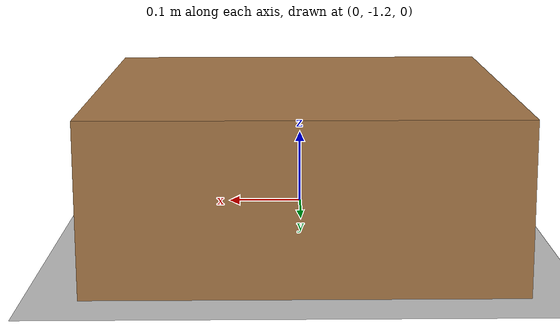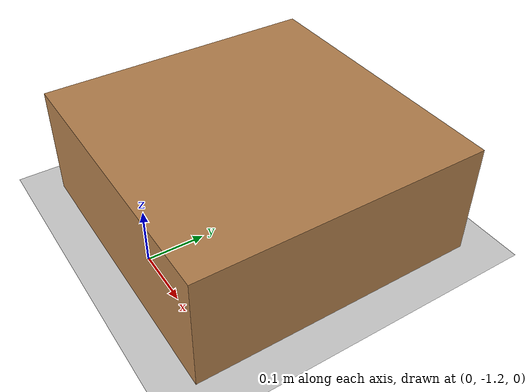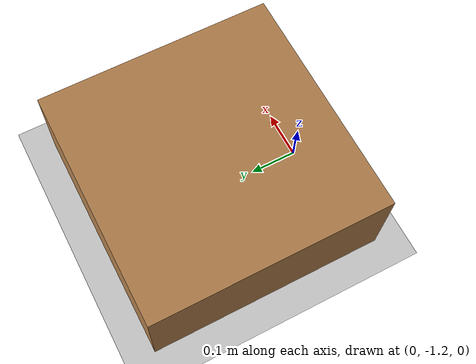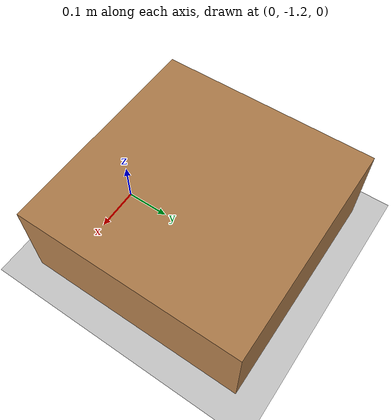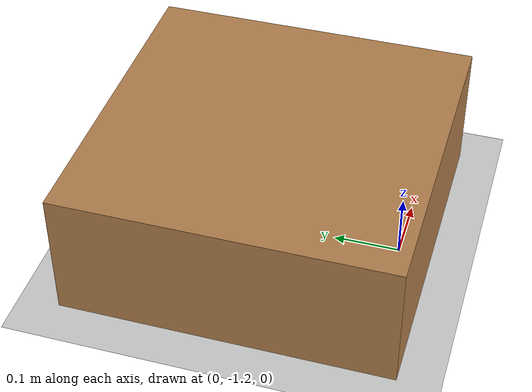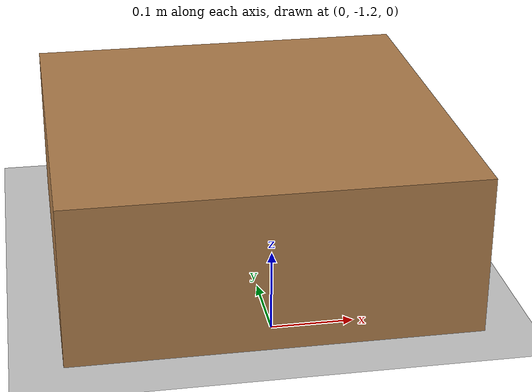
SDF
<sdf version="1.4">
 <world name="default">
  <model name="ground_plane">
   <static>1</static>
   <link name="link">
    <collision name="collision">
     <geometry><plane><normal>0 0 1</normal><size>100 100</size></plane></geometry>
     <surface><friction><ode><mu>100</mu><mu2>50</mu2></ode></friction></surface>
    </collision>
    <visual name="visual">
     <cast_shadows>0</cast_shadows>
     <geometry><plane><normal>0 0 1</normal><size>100 100</size></plane></geometry>
     <material>
      <script><uri>file://media/materials/scripts/gazebo.material</uri><name>Gazebo/Grey</name></script>
     </material>
    </visual>
    <velocity_decay><linear>0</linear><angular>0</angular></velocity_decay>
   </link>
  </model>
  <model name="my_model">
   <pose>-0 -1 0.1 0 -0 0</pose>
   <static>0</static>
   <link name="link">
    <inertial>
     <mass>0.3</mass>
     <inertia><ixx>0.00725</ixx><ixy>0</ixy><ixz>0</ixz><iyy>0.00725</iyy><iyz>0</iyz><izz>0.0125</izz></inertia>
    </inertial>
    <collision name="collision"><geometry><box><size>0.5 0.5 0.2</size></box></geometry></collision>
    <visual name="visual">
     <geometry><box><size>0.5 0.5 0.2</size></box></geometry>
     <material>
      <script><uri>file://media/materials/scripts/gazebo.material</uri><name>Gazebo/Wood</name></script>
     </material>
    </visual>
    <velocity_decay><linear>0</linear><angular>0</angular></velocity_decay>
   </link>
  </model>
 </world>
</sdf>
